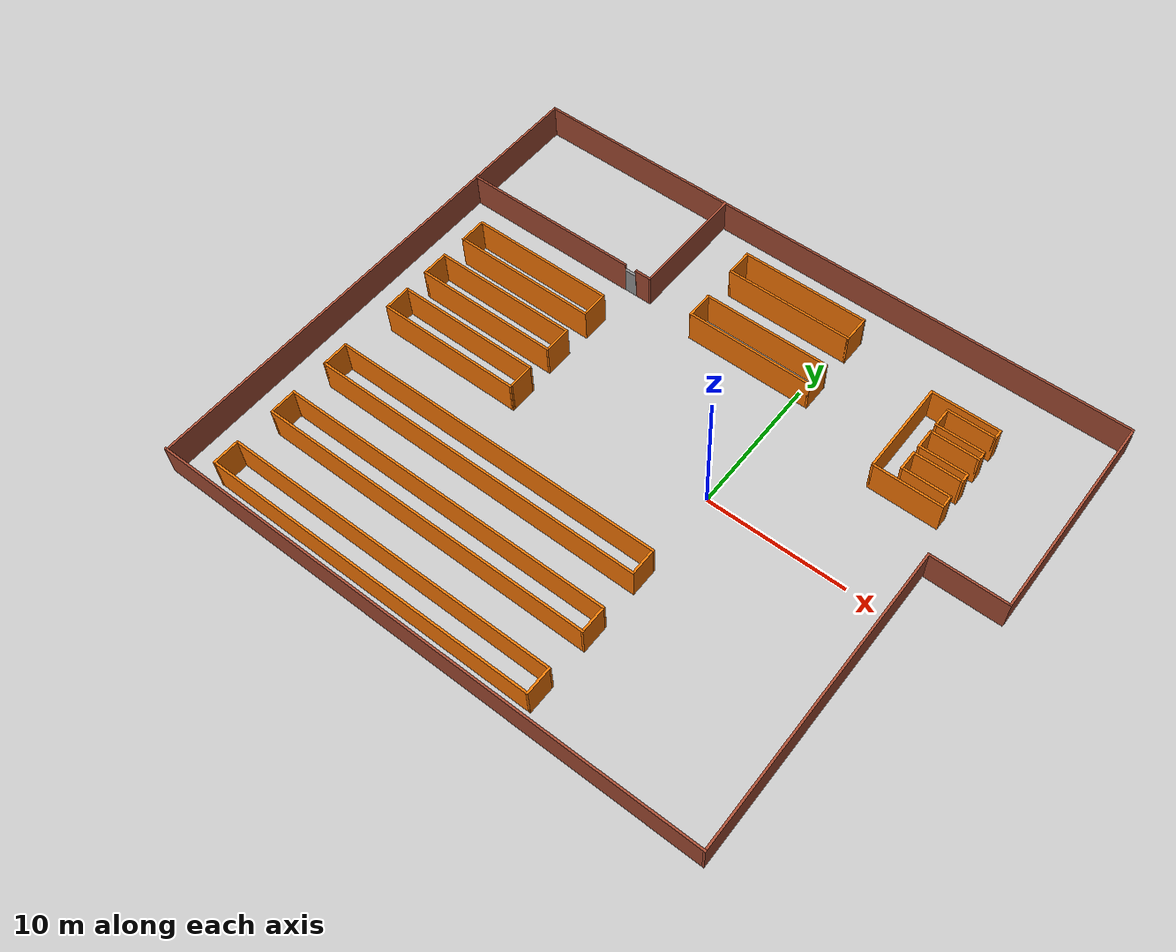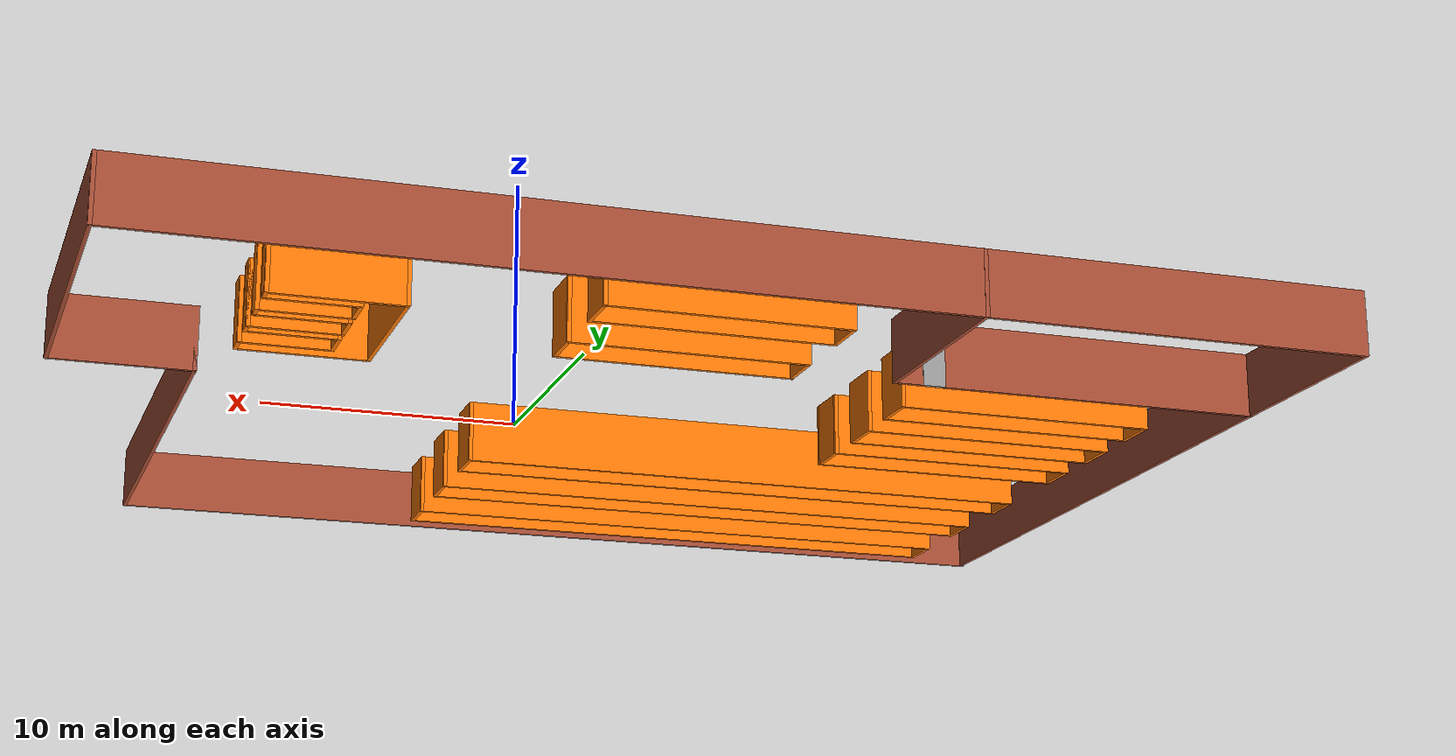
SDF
<?xml version='1.0'?>
<sdf version='1.6'>
  <model name='si_amr_factory'>
    <pose frame=''>-4.35152 0.143937 0 0 -0 0</pose>
    <link name='Door_0'>
      <collision name='Door_0_Collision'>
        <geometry>
          <box>
            <size>0.9 0.17 2</size>
          </box>
        </geometry>
        <pose frame=''>0 0 1 0 -0 0</pose>
      </collision>
      <visual name='Door_0_Visual'>
        <pose frame=''>0 0 1 0 -0 0</pose>
        <geometry>
          <box>
            <size>0.9 0.17 2</size>
          </box>
        </geometry>
        <material>
          <script>
            <uri>file://media/materials/scripts/gazebo.material</uri>
            <name>Gazebo/Grey</name>
          </script>
        </material>
      </visual>
      <pose frame=''>-9.26953 9.88213 0 0 -0 0</pose>
    </link>
    <link name='Wall_11'>
      <collision name='Wall_11_Collision'>
        <geometry>
          <box>
            <size>40.25 0.15 2.5</size>
          </box>
        </geometry>
        <pose frame=''>0 0 1.25 0 -0 0</pose>
      </collision>
      <visual name='Wall_11_Visual'>
        <pose frame=''>0 0 1.25 0 -0 0</pose>
        <geometry>
          <box>
            <size>40.25 0.15 2.5</size>
          </box>
        </geometry>
        <material>
          <script>
            <uri>file://media/materials/scripts/gazebo.material</uri>
            <name>Gazebo/Bricks</name>
          </script>
          <ambient>1 1 1 1</ambient>
        </material>
        <meta>
          <layer>0</layer>
        </meta>
      </visual>
      <pose frame=''>-2.675 -18.228 0 0 -0 0</pose>
    </link>
    <link name='Wall_12'>
      <collision name='Wall_12_Collision'>
        <geometry>
          <box>
            <size>21.75 0.15 2.5</size>
          </box>
        </geometry>
        <pose frame=''>0 0 1.25 0 -0 0</pose>
      </collision>
      <visual name='Wall_12_Visual'>
        <pose frame=''>0 0 1.25 0 -0 0</pose>
        <geometry>
          <box>
            <size>21.75 0.15 2.5</size>
          </box>
        </geometry>
        <material>
          <script>
            <uri>file://media/materials/scripts/gazebo.material</uri>
            <name>Gazebo/Bricks</name>
          </script>
          <ambient>1 1 1 1</ambient>
        </material>
        <meta>
          <layer>0</layer>
        </meta>
      </visual>
      <pose frame=''>17.375 -7.42803 0 0 -0 1.5708</pose>
    </link>
    <link name='Wall_13'>
      <collision name='Wall_13_Collision'>
        <geometry>
          <box>
            <size>5.5 0.15 2.5</size>
          </box>
        </geometry>
        <pose frame=''>0 0 1.25 0 -0 0</pose>
      </collision>
      <visual name='Wall_13_Visual'>
        <pose frame=''>0 0 1.25 0 -0 0</pose>
        <geometry>
          <box>
            <size>5.5 0.15 2.5</size>
          </box>
        </geometry>
        <material>
          <script>
            <uri>file://media/materials/scripts/gazebo.material</uri>
            <name>Gazebo/Bricks</name>
          </script>
          <ambient>1 1 1 1</ambient>
        </material>
        <meta>
          <layer>0</layer>
        </meta>
      </visual>
      <pose frame=''>20.05 3.37197 0 0 -0 0</pose>
    </link>
    <link name='Wall_14'>
      <collision name='Wall_14_Collision'>
        <geometry>
          <box>
            <size>15 0.15 2.5</size>
          </box>
        </geometry>
        <pose frame=''>0 0 1.25 0 -0 0</pose>
      </collision>
      <visual name='Wall_14_Visual'>
        <pose frame=''>0 0 1.25 0 -0 0</pose>
        <geometry>
          <box>
            <size>15 0.15 2.5</size>
          </box>
        </geometry>
        <material>
          <script>
            <uri>file://media/materials/scripts/gazebo.material</uri>
            <name>Gazebo/Bricks</name>
          </script>
          <ambient>1 1 1 1</ambient>
        </material>
        <meta>
          <layer>0</layer>
        </meta>
      </visual>
      <pose frame=''>22.725 10.797 0 0 -0 1.5708</pose>
    </link>
    <link name='Wall_15'>
      <collision name='Wall_15_Collision'>
        <geometry>
          <box>
            <size>45.5 0.15 2.5</size>
          </box>
        </geometry>
        <pose frame=''>0 0 1.25 0 -0 0</pose>
      </collision>
      <visual name='Wall_15_Visual'>
        <pose frame=''>0 0 1.25 0 -0 0</pose>
        <geometry>
          <box>
            <size>45.5 0.15 2.5</size>
          </box>
        </geometry>
        <material>
          <script>
            <uri>file://media/materials/scripts/gazebo.material</uri>
            <name>Gazebo/Bricks</name>
          </script>
          <ambient>1 1 1 1</ambient>
        </material>
        <meta>
          <layer>0</layer>
        </meta>
      </visual>
      <pose frame=''>0.05 18.222 0 0 -0 3.14159</pose>
    </link>
    <link name='Wall_16'>
      <collision name='Wall_16_Collision'>
        <geometry>
          <box>
            <size>36.5 0.15 2.5</size>
          </box>
        </geometry>
        <pose frame=''>0 0 1.25 0 -0 0</pose>
      </collision>
      <visual name='Wall_16_Visual'>
        <pose frame=''>0 0 1.25 0 -0 0</pose>
        <geometry>
          <box>
            <size>36.5 0.15 2.5</size>
          </box>
        </geometry>
        <material>
          <script>
            <uri>file://media/materials/scripts/gazebo.material</uri>
            <name>Gazebo/Bricks</name>
          </script>
          <ambient>1 1 1 1</ambient>
        </material>
        <meta>
          <layer>0</layer>
        </meta>
      </visual>
      <pose frame=''>-22.625 0.046968 0 0 -0 -1.5708</pose>
    </link>
    <link name='Wall_18'>
      <collision name='Wall_18_Collision'>
        <geometry>
          <box>
            <size>24.5 0.15 2.5</size>
          </box>
        </geometry>
        <pose frame=''>0 0 1.25 0 -0 0</pose>
      </collision>
      <visual name='Wall_18_Visual'>
        <pose frame=''>0 0 1.25 0 -0 0</pose>
        <geometry>
          <box>
            <size>24.5 0.15 2.5</size>
          </box>
        </geometry>
        <material>
          <script>
            <uri>file://media/materials/scripts/gazebo.material</uri>
            <name>Gazebo/Grey</name>
          </script>
          <ambient>0.996078 0.47451 0.0196078 1</ambient>
        </material>
        <meta>
          <layer>0</layer>
        </meta>
      </visual>
      <pose frame=''>-7.49549 -17.1298 0 0 -0 0</pose>
    </link>
    <link name='Wall_19'>
      <collision name='Wall_19_Collision'>
        <geometry>
          <box>
            <size>2 0.15 2.5</size>
          </box>
        </geometry>
        <pose frame=''>0 0 1.25 0 -0 0</pose>
      </collision>
      <visual name='Wall_19_Visual'>
        <pose frame=''>0 0 1.25 0 -0 0</pose>
        <geometry>
          <box>
            <size>2 0.15 2.5</size>
          </box>
        </geometry>
        <material>
          <script>
            <uri>file://media/materials/scripts/gazebo.material</uri>
            <name>Gazebo/Grey</name>
          </script>
          <ambient>0.996078 0.47451 0.0196078 1</ambient>
        </material>
        <meta>
          <layer>0</layer>
        </meta>
      </visual>
      <pose frame=''>4.67951 -16.2048 0 0 -0 1.5708</pose>
    </link>
    <link name='Wall_23'>
      <collision name='Wall_23_Collision'>
        <geometry>
          <box>
            <size>24.5 0.15 2.5</size>
          </box>
        </geometry>
        <pose frame=''>0 0 1.25 0 -0 0</pose>
      </collision>
      <visual name='Wall_23_Visual'>
        <pose frame=''>0 0 1.25 0 -0 0</pose>
        <geometry>
          <box>
            <size>24.5 0.15 2.5</size>
          </box>
        </geometry>
        <material>
          <script>
            <uri>file://media/materials/scripts/gazebo.material</uri>
            <name>Gazebo/Grey</name>
          </script>
          <ambient>0.996078 0.47451 0.0196078 1</ambient>
        </material>
        <meta>
          <layer>0</layer>
        </meta>
      </visual>
      <pose frame=''>-7.49549 -15.2798 0 0 -0 3.14159</pose>
    </link>
    <link name='Wall_24'>
      <collision name='Wall_24_Collision'>
        <geometry>
          <box>
            <size>2 0.15 2.5</size>
          </box>
        </geometry>
        <pose frame=''>0 0 1.25 0 -0 0</pose>
      </collision>
      <visual name='Wall_24_Visual'>
        <pose frame=''>0 0 1.25 0 -0 0</pose>
        <geometry>
          <box>
            <size>2 0.15 2.5</size>
          </box>
        </geometry>
        <material>
          <script>
            <uri>file://media/materials/scripts/gazebo.material</uri>
            <name>Gazebo/Grey</name>
          </script>
          <ambient>0.996078 0.47451 0.0196078 1</ambient>
        </material>
        <meta>
          <layer>0</layer>
        </meta>
      </visual>
      <pose frame=''>-19.6705 -16.2048 0 0 -0 -1.5708</pose>
    </link>
    <link name='Wall_26'>
      <collision name='Wall_26_Collision'>
        <geometry>
          <box>
            <size>24.5 0.15 2.5</size>
          </box>
        </geometry>
        <pose frame=''>0 0 1.25 0 -0 0</pose>
      </collision>
      <visual name='Wall_26_Visual'>
        <pose frame=''>0 0 1.25 0 -0 0</pose>
        <geometry>
          <box>
            <size>24.5 0.15 2.5</size>
          </box>
        </geometry>
        <material>
          <script>
            <uri>file://media/materials/scripts/gazebo.material</uri>
            <name>Gazebo/Grey</name>
          </script>
          <ambient>0.996078 0.47451 0.0196078 1</ambient>
        </material>
        <meta>
          <layer>0</layer>
        </meta>
      </visual>
      <pose frame=''>-7.44652 -12.4509 0 0 -0 0</pose>
    </link>
    <link name='Wall_27'>
      <collision name='Wall_27_Collision'>
        <geometry>
          <box>
            <size>2 0.15 2.5</size>
          </box>
        </geometry>
        <pose frame=''>0 0 1.25 0 -0 0</pose>
      </collision>
      <visual name='Wall_27_Visual'>
        <pose frame=''>0 0 1.25 0 -0 0</pose>
        <geometry>
          <box>
            <size>2 0.15 2.5</size>
          </box>
        </geometry>
        <material>
          <script>
            <uri>file://media/materials/scripts/gazebo.material</uri>
            <name>Gazebo/Grey</name>
          </script>
          <ambient>0.996078 0.47451 0.0196078 1</ambient>
        </material>
        <meta>
          <layer>0</layer>
        </meta>
      </visual>
      <pose frame=''>4.72848 -11.5259 0 0 -0 1.5708</pose>
    </link>
    <link name='Wall_28'>
      <collision name='Wall_28_Collision'>
        <geometry>
          <box>
            <size>24.5 0.15 2.5</size>
          </box>
        </geometry>
        <pose frame=''>0 0 1.25 0 -0 0</pose>
      </collision>
      <visual name='Wall_28_Visual'>
        <pose frame=''>0 0 1.25 0 -0 0</pose>
        <geometry>
          <box>
            <size>24.5 0.15 2.5</size>
          </box>
        </geometry>
        <material>
          <script>
            <uri>file://media/materials/scripts/gazebo.material</uri>
            <name>Gazebo/Grey</name>
          </script>
          <ambient>0.996078 0.47451 0.0196078 1</ambient>
        </material>
        <meta>
          <layer>0</layer>
        </meta>
      </visual>
      <pose frame=''>-7.44652 -10.6009 0 0 -0 3.14159</pose>
    </link>
    <link name='Wall_29'>
      <collision name='Wall_29_Collision'>
        <geometry>
          <box>
            <size>2 0.15 2.5</size>
          </box>
        </geometry>
        <pose frame=''>0 0 1.25 0 -0 0</pose>
      </collision>
      <visual name='Wall_29_Visual'>
        <pose frame=''>0 0 1.25 0 -0 0</pose>
        <geometry>
          <box>
            <size>2 0.15 2.5</size>
          </box>
        </geometry>
        <material>
          <script>
            <uri>file://media/materials/scripts/gazebo.material</uri>
            <name>Gazebo/Grey</name>
          </script>
          <ambient>0.996078 0.47451 0.0196078 1</ambient>
        </material>
        <meta>
          <layer>0</layer>
        </meta>
      </visual>
      <pose frame=''>-19.6215 -11.5259 0 0 -0 -1.5708</pose>
    </link>
    <link name='Wall_31'>
      <collision name='Wall_31_Collision'>
        <geometry>
          <box>
            <size>24.5 0.15 2.5</size>
          </box>
        </geometry>
        <pose frame=''>0 0 1.25 0 -0 0</pose>
      </collision>
      <visual name='Wall_31_Visual'>
        <pose frame=''>0 0 1.25 0 -0 0</pose>
        <geometry>
          <box>
            <size>24.5 0.15 2.5</size>
          </box>
        </geometry>
        <material>
          <script>
            <uri>file://media/materials/scripts/gazebo.material</uri>
            <name>Gazebo/Grey</name>
          </script>
          <ambient>0.996078 0.47451 0.0196078 1</ambient>
        </material>
        <meta>
          <layer>0</layer>
        </meta>
      </visual>
      <pose frame=''>-7.46965 -7.87105 0 0 -0 0</pose>
    </link>
    <link name='Wall_32'>
      <collision name='Wall_32_Collision'>
        <geometry>
          <box>
            <size>2 0.15 2.5</size>
          </box>
        </geometry>
        <pose frame=''>0 0 1.25 0 -0 0</pose>
      </collision>
      <visual name='Wall_32_Visual'>
        <pose frame=''>0 0 1.25 0 -0 0</pose>
        <geometry>
          <box>
            <size>2 0.15 2.5</size>
          </box>
        </geometry>
        <material>
          <script>
            <uri>file://media/materials/scripts/gazebo.material</uri>
            <name>Gazebo/Grey</name>
          </script>
          <ambient>0.996078 0.47451 0.0196078 1</ambient>
        </material>
        <meta>
          <layer>0</layer>
        </meta>
      </visual>
      <pose frame=''>4.70535 -6.94605 0 0 -0 1.5708</pose>
    </link>
    <link name='Wall_33'>
      <collision name='Wall_33_Collision'>
        <geometry>
          <box>
            <size>24.5 0.15 2.5</size>
          </box>
        </geometry>
        <pose frame=''>0 0 1.25 0 -0 0</pose>
      </collision>
      <visual name='Wall_33_Visual'>
        <pose frame=''>0 0 1.25 0 -0 0</pose>
        <geometry>
          <box>
            <size>24.5 0.15 2.5</size>
          </box>
        </geometry>
        <material>
          <script>
            <uri>file://media/materials/scripts/gazebo.material</uri>
            <name>Gazebo/Grey</name>
          </script>
          <ambient>0.996078 0.47451 0.0196078 1</ambient>
        </material>
        <meta>
          <layer>0</layer>
        </meta>
      </visual>
      <pose frame=''>-7.46965 -6.02105 0 0 -0 3.14159</pose>
    </link>
    <link name='Wall_34'>
      <collision name='Wall_34_Collision'>
        <geometry>
          <box>
            <size>2 0.15 2.5</size>
          </box>
        </geometry>
        <pose frame=''>0 0 1.25 0 -0 0</pose>
      </collision>
      <visual name='Wall_34_Visual'>
        <pose frame=''>0 0 1.25 0 -0 0</pose>
        <geometry>
          <box>
            <size>2 0.15 2.5</size>
          </box>
        </geometry>
        <material>
          <script>
            <uri>file://media/materials/scripts/gazebo.material</uri>
            <name>Gazebo/Grey</name>
          </script>
          <ambient>0.996078 0.47451 0.0196078 1</ambient>
        </material>
        <meta>
          <layer>0</layer>
        </meta>
      </visual>
      <pose frame=''>-19.6446 -6.94605 0 0 -0 -1.5708</pose>
    </link>
    <link name='Wall_36'>
      <collision name='Wall_36_Collision'>
        <geometry>
          <box>
            <size>10.5 0.15 2.5</size>
          </box>
        </geometry>
        <pose frame=''>0 0 1.25 0 -0 0</pose>
      </collision>
      <visual name='Wall_36_Visual'>
        <pose frame=''>0 0 1.25 0 -0 0</pose>
        <geometry>
          <box>
            <size>10.5 0.15 2.5</size>
          </box>
        </geometry>
        <material>
          <script>
            <uri>file://media/materials/scripts/gazebo.material</uri>
            <name>Gazebo/Grey</name>
          </script>
          <ambient>0.996078 0.47451 0.0196078 1</ambient>
        </material>
        <meta>
          <layer>0</layer>
        </meta>
      </visual>
      <pose frame=''>-14.4928 1.42746 0 0 -0 0</pose>
    </link>
    <link name='Wall_37'>
      <collision name='Wall_37_Collision'>
        <geometry>
          <box>
            <size>2 0.15 2.5</size>
          </box>
        </geometry>
        <pose frame=''>0 0 1.25 0 -0 0</pose>
      </collision>
      <visual name='Wall_37_Visual'>
        <pose frame=''>0 0 1.25 0 -0 0</pose>
        <geometry>
          <box>
            <size>2 0.15 2.5</size>
          </box>
        </geometry>
        <material>
          <script>
            <uri>file://media/materials/scripts/gazebo.material</uri>
            <name>Gazebo/Grey</name>
          </script>
          <ambient>0.996078 0.47451 0.0196078 1</ambient>
        </material>
        <meta>
          <layer>0</layer>
        </meta>
      </visual>
      <pose frame=''>-9.31778 2.35246 0 0 -0 1.5708</pose>
    </link>
    <link name='Wall_38'>
      <collision name='Wall_38_Collision'>
        <geometry>
          <box>
            <size>10.5 0.15 2.5</size>
          </box>
        </geometry>
        <pose frame=''>0 0 1.25 0 -0 0</pose>
      </collision>
      <visual name='Wall_38_Visual'>
        <pose frame=''>0 0 1.25 0 -0 0</pose>
        <geometry>
          <box>
            <size>10.5 0.15 2.5</size>
          </box>
        </geometry>
        <material>
          <script>
            <uri>file://media/materials/scripts/gazebo.material</uri>
            <name>Gazebo/Grey</name>
          </script>
          <ambient>0.996078 0.47451 0.0196078 1</ambient>
        </material>
        <meta>
          <layer>0</layer>
        </meta>
      </visual>
      <pose frame=''>-14.4928 3.27746 0 0 -0 3.14159</pose>
    </link>
    <link name='Wall_39'>
      <collision name='Wall_39_Collision'>
        <geometry>
          <box>
            <size>2 0.15 2.5</size>
          </box>
        </geometry>
        <pose frame=''>0 0 1.25 0 -0 0</pose>
      </collision>
      <visual name='Wall_39_Visual'>
        <pose frame=''>0 0 1.25 0 -0 0</pose>
        <geometry>
          <box>
            <size>2 0.15 2.5</size>
          </box>
        </geometry>
        <material>
          <script>
            <uri>file://media/materials/scripts/gazebo.material</uri>
            <name>Gazebo/Grey</name>
          </script>
          <ambient>0.996078 0.47451 0.0196078 1</ambient>
        </material>
        <meta>
          <layer>0</layer>
        </meta>
      </visual>
      <pose frame=''>-19.6678 2.35246 0 0 -0 -1.5708</pose>
    </link>
    <link name='Wall_42'>
      <collision name='Wall_42_Collision'>
        <geometry>
          <box>
            <size>10.5 0.15 2.5</size>
          </box>
        </geometry>
        <pose frame=''>0 0 1.25 0 -0 0</pose>
      </collision>
      <visual name='Wall_42_Visual'>
        <pose frame=''>0 0 1.25 0 -0 0</pose>
        <geometry>
          <box>
            <size>10.5 0.15 2.5</size>
          </box>
        </geometry>
        <material>
          <script>
            <uri>file://media/materials/scripts/gazebo.material</uri>
            <name>Gazebo/Grey</name>
          </script>
          <ambient>0.996078 0.47451 0.0196078 1</ambient>
        </material>
        <meta>
          <layer>0</layer>
        </meta>
      </visual>
      <pose frame=''>-14.4696 -2.18092 0 0 -0 0</pose>
    </link>
    <link name='Wall_43'>
      <collision name='Wall_43_Collision'>
        <geometry>
          <box>
            <size>2 0.15 2.5</size>
          </box>
        </geometry>
        <pose frame=''>0 0 1.25 0 -0 0</pose>
      </collision>
      <visual name='Wall_43_Visual'>
        <pose frame=''>0 0 1.25 0 -0 0</pose>
        <geometry>
          <box>
            <size>2 0.15 2.5</size>
          </box>
        </geometry>
        <material>
          <script>
            <uri>file://media/materials/scripts/gazebo.material</uri>
            <name>Gazebo/Grey</name>
          </script>
          <ambient>0.996078 0.47451 0.0196078 1</ambient>
        </material>
        <meta>
          <layer>0</layer>
        </meta>
      </visual>
      <pose frame=''>-9.29465 -1.25592 0 0 -0 1.5708</pose>
    </link>
    <link name='Wall_44'>
      <collision name='Wall_44_Collision'>
        <geometry>
          <box>
            <size>10.5 0.15 2.5</size>
          </box>
        </geometry>
        <pose frame=''>0 0 1.25 0 -0 0</pose>
      </collision>
      <visual name='Wall_44_Visual'>
        <pose frame=''>0 0 1.25 0 -0 0</pose>
        <geometry>
          <box>
            <size>10.5 0.15 2.5</size>
          </box>
        </geometry>
        <material>
          <script>
            <uri>file://media/materials/scripts/gazebo.material</uri>
            <name>Gazebo/Grey</name>
          </script>
          <ambient>0.996078 0.47451 0.0196078 1</ambient>
        </material>
        <meta>
          <layer>0</layer>
        </meta>
      </visual>
      <pose frame=''>-14.4696 -0.330918 0 0 -0 3.14159</pose>
    </link>
    <link name='Wall_45'>
      <collision name='Wall_45_Collision'>
        <geometry>
          <box>
            <size>2 0.15 2.5</size>
          </box>
        </geometry>
        <pose frame=''>0 0 1.25 0 -0 0</pose>
      </collision>
      <visual name='Wall_45_Visual'>
        <pose frame=''>0 0 1.25 0 -0 0</pose>
        <geometry>
          <box>
            <size>2 0.15 2.5</size>
          </box>
        </geometry>
        <material>
          <script>
            <uri>file://media/materials/scripts/gazebo.material</uri>
            <name>Gazebo/Grey</name>
          </script>
          <ambient>0.996078 0.47451 0.0196078 1</ambient>
        </material>
        <meta>
          <layer>0</layer>
        </meta>
      </visual>
      <pose frame=''>-19.6446 -1.25592 0 0 -0 -1.5708</pose>
    </link>
    <link name='Wall_48'>
      <collision name='Wall_48_Collision'>
        <geometry>
          <box>
            <size>10.5 0.15 2.5</size>
          </box>
        </geometry>
        <pose frame=''>0 0 1.25 0 -0 0</pose>
      </collision>
      <visual name='Wall_48_Visual'>
        <pose frame=''>0 0 1.25 0 -0 0</pose>
        <geometry>
          <box>
            <size>10.5 0.15 2.5</size>
          </box>
        </geometry>
        <material>
          <script>
            <uri>file://media/materials/scripts/gazebo.material</uri>
            <name>Gazebo/Grey</name>
          </script>
          <ambient>0.996078 0.47451 0.0196078 1</ambient>
        </material>
        <meta>
          <layer>0</layer>
        </meta>
      </visual>
      <pose frame=''>-14.4234 5.08209 0 0 -0 0</pose>
    </link>
    <link name='Wall_49'>
      <collision name='Wall_49_Collision'>
        <geometry>
          <box>
            <size>2 0.15 2.5</size>
          </box>
        </geometry>
        <pose frame=''>0 0 1.25 0 -0 0</pose>
      </collision>
      <visual name='Wall_49_Visual'>
        <pose frame=''>0 0 1.25 0 -0 0</pose>
        <geometry>
          <box>
            <size>2 0.15 2.5</size>
          </box>
        </geometry>
        <material>
          <script>
            <uri>file://media/materials/scripts/gazebo.material</uri>
            <name>Gazebo/Grey</name>
          </script>
          <ambient>0.996078 0.47451 0.0196078 1</ambient>
        </material>
        <meta>
          <layer>0</layer>
        </meta>
      </visual>
      <pose frame=''>-9.24839 6.00709 0 0 -0 1.5708</pose>
    </link>
    <link name='Wall_50'>
      <collision name='Wall_50_Collision'>
        <geometry>
          <box>
            <size>10.5 0.15 2.5</size>
          </box>
        </geometry>
        <pose frame=''>0 0 1.25 0 -0 0</pose>
      </collision>
      <visual name='Wall_50_Visual'>
        <pose frame=''>0 0 1.25 0 -0 0</pose>
        <geometry>
          <box>
            <size>10.5 0.15 2.5</size>
          </box>
        </geometry>
        <material>
          <script>
            <uri>file://media/materials/scripts/gazebo.material</uri>
            <name>Gazebo/Grey</name>
          </script>
          <ambient>0.996078 0.47451 0.0196078 1</ambient>
        </material>
        <meta>
          <layer>0</layer>
        </meta>
      </visual>
      <pose frame=''>-14.4234 6.93209 0 0 -0 3.14159</pose>
    </link>
    <link name='Wall_51'>
      <collision name='Wall_51_Collision'>
        <geometry>
          <box>
            <size>2 0.15 2.5</size>
          </box>
        </geometry>
        <pose frame=''>0 0 1.25 0 -0 0</pose>
      </collision>
      <visual name='Wall_51_Visual'>
        <pose frame=''>0 0 1.25 0 -0 0</pose>
        <geometry>
          <box>
            <size>2 0.15 2.5</size>
          </box>
        </geometry>
        <material>
          <script>
            <uri>file://media/materials/scripts/gazebo.material</uri>
            <name>Gazebo/Grey</name>
          </script>
          <ambient>0.996078 0.47451 0.0196078 1</ambient>
        </material>
        <meta>
          <layer>0</layer>
        </meta>
      </visual>
      <pose frame=''>-19.5984 6.00709 0 0 -0 -1.5708</pose>
    </link>
    <link name='Wall_53'>
      <collision name='Wall_53_Collision'>
        <geometry>
          <box>
            <size>9.25 0.15 2.5</size>
          </box>
        </geometry>
        <pose frame=''>0 0 1.25 0 -0 0</pose>
      </collision>
      <visual name='Wall_53_Visual'>
        <pose frame=''>0 0 1.25 0 -0 0</pose>
        <geometry>
          <box>
            <size>9.25 0.15 2.5</size>
          </box>
        </geometry>
        <material>
          <script>
            <uri>file://media/materials/scripts/gazebo.material</uri>
            <name>Gazebo/Grey</name>
          </script>
          <ambient>0.996078 0.47451 0.0196078 1</ambient>
        </material>
        <meta>
          <layer>0</layer>
        </meta>
      </visual>
      <pose frame=''>0.64642 13.6054 0 0 -0 0</pose>
    </link>
    <link name='Wall_54'>
      <collision name='Wall_54_Collision'>
        <geometry>
          <box>
            <size>2 0.15 2.5</size>
          </box>
        </geometry>
        <pose frame=''>0 0 1.25 0 -0 0</pose>
      </collision>
      <visual name='Wall_54_Visual'>
        <pose frame=''>0 0 1.25 0 -0 0</pose>
        <geometry>
          <box>
            <size>2 0.15 2.5</size>
          </box>
        </geometry>
        <material>
          <script>
            <uri>file://media/materials/scripts/gazebo.material</uri>
            <name>Gazebo/Grey</name>
          </script>
          <ambient>0.996078 0.47451 0.0196078 1</ambient>
        </material>
        <meta>
          <layer>0</layer>
        </meta>
      </visual>
      <pose frame=''>5.19642 14.5304 0 0 -0 1.5708</pose>
    </link>
    <link name='Wall_55'>
      <collision name='Wall_55_Collision'>
        <geometry>
          <box>
            <size>9.25 0.15 2.5</size>
          </box>
        </geometry>
        <pose frame=''>0 0 1.25 0 -0 0</pose>
      </collision>
      <visual name='Wall_55_Visual'>
        <pose frame=''>0 0 1.25 0 -0 0</pose>
        <geometry>
          <box>
            <size>9.25 0.15 2.5</size>
          </box>
        </geometry>
        <material>
          <script>
            <uri>file://media/materials/scripts/gazebo.material</uri>
            <name>Gazebo/Grey</name>
          </script>
          <ambient>0.996078 0.47451 0.0196078 1</ambient>
        </material>
        <meta>
          <layer>0</layer>
        </meta>
      </visual>
      <pose frame=''>0.64642 15.4554 0 0 -0 3.14159</pose>
    </link>
    <link name='Wall_56'>
      <collision name='Wall_56_Collision'>
        <geometry>
          <box>
            <size>2 0.15 2.5</size>
          </box>
        </geometry>
        <pose frame=''>0 0 1.25 0 -0 0</pose>
      </collision>
      <visual name='Wall_56_Visual'>
        <pose frame=''>0 0 1.25 0 -0 0</pose>
        <geometry>
          <box>
            <size>2 0.15 2.5</size>
          </box>
        </geometry>
        <material>
          <script>
            <uri>file://media/materials/scripts/gazebo.material</uri>
            <name>Gazebo/Grey</name>
          </script>
          <ambient>0.996078 0.47451 0.0196078 1</ambient>
        </material>
        <meta>
          <layer>0</layer>
        </meta>
      </visual>
      <pose frame=''>-3.90358 14.5304 0 0 -0 -1.5708</pose>
    </link>
    <link name='Wall_58'>
      <collision name='Wall_58_Collision'>
        <geometry>
          <box>
            <size>9.25 0.15 2.5</size>
          </box>
        </geometry>
        <pose frame=''>0 0 1.25 0 -0 0</pose>
      </collision>
      <visual name='Wall_58_Visual'>
        <pose frame=''>0 0 1.25 0 -0 0</pose>
        <geometry>
          <box>
            <size>9.25 0.15 2.5</size>
          </box>
        </geometry>
        <material>
          <script>
            <uri>file://media/materials/scripts/gazebo.material</uri>
            <name>Gazebo/Grey</name>
          </script>
          <ambient>0.996078 0.47451 0.0196078 1</ambient>
        </material>
        <meta>
          <layer>0</layer>
        </meta>
      </visual>
      <pose frame=''>0.69889 9.1804 0 0 -0 0</pose>
    </link>
    <link name='Wall_59'>
      <collision name='Wall_59_Collision'>
        <geometry>
          <box>
            <size>2 0.15 2.5</size>
          </box>
        </geometry>
        <pose frame=''>0 0 1.25 0 -0 0</pose>
      </collision>
      <visual name='Wall_59_Visual'>
        <pose frame=''>0 0 1.25 0 -0 0</pose>
        <geometry>
          <box>
            <size>2 0.15 2.5</size>
          </box>
        </geometry>
        <material>
          <script>
            <uri>file://media/materials/scripts/gazebo.material</uri>
            <name>Gazebo/Grey</name>
          </script>
          <ambient>0.996078 0.47451 0.0196078 1</ambient>
        </material>
        <meta>
          <layer>0</layer>
        </meta>
      </visual>
      <pose frame=''>5.24889 10.1054 0 0 -0 1.5708</pose>
    </link>
    <link name='Wall_60'>
      <collision name='Wall_60_Collision'>
        <geometry>
          <box>
            <size>9.25 0.15 2.5</size>
          </box>
        </geometry>
        <pose frame=''>0 0 1.25 0 -0 0</pose>
      </collision>
      <visual name='Wall_60_Visual'>
        <pose frame=''>0 0 1.25 0 -0 0</pose>
        <geometry>
          <box>
            <size>9.25 0.15 2.5</size>
          </box>
        </geometry>
        <material>
          <script>
            <uri>file://media/materials/scripts/gazebo.material</uri>
            <name>Gazebo/Grey</name>
          </script>
          <ambient>0.996078 0.47451 0.0196078 1</ambient>
        </material>
        <meta>
          <layer>0</layer>
        </meta>
      </visual>
      <pose frame=''>0.69889 11.0304 0 0 -0 3.14159</pose>
    </link>
    <link name='Wall_61'>
      <collision name='Wall_61_Collision'>
        <geometry>
          <box>
            <size>2 0.15 2.5</size>
          </box>
        </geometry>
        <pose frame=''>0 0 1.25 0 -0 0</pose>
      </collision>
      <visual name='Wall_61_Visual'>
        <pose frame=''>0 0 1.25 0 -0 0</pose>
        <geometry>
          <box>
            <size>2 0.15 2.5</size>
          </box>
        </geometry>
        <material>
          <script>
            <uri>file://media/materials/scripts/gazebo.material</uri>
            <name>Gazebo/Grey</name>
          </script>
          <ambient>0.996078 0.47451 0.0196078 1</ambient>
        </material>
        <meta>
          <layer>0</layer>
        </meta>
      </visual>
      <pose frame=''>-3.85111 10.1054 0 0 -0 -1.5708</pose>
    </link>
    <link name='Wall_63'>
      <collision name='Wall_63_Collision'>
        <geometry>
          <box>
            <size>13 0.15 2.5</size>
          </box>
        </geometry>
        <pose frame=''>0 0 1.25 0 -0 0</pose>
      </collision>
      <visual name='Wall_63_Visual'>
        <pose frame=''>0 0 1.25 0 -0 0</pose>
        <geometry>
          <box>
            <size>13 0.15 2.5</size>
          </box>
        </geometry>
        <material>
          <script>
            <uri>file://media/materials/scripts/gazebo.material</uri>
            <name>Gazebo/Bricks</name>
          </script>
          <ambient>1 1 1 1</ambient>
        </material>
        <meta>
          <layer>0</layer>
        </meta>
      </visual>
      <pose frame=''>-16.1712 9.85553 0 0 -0 0</pose>
    </link>
    <link name='Wall_65'>
      <collision name='Wall_65_Collision'>
        <geometry>
          <box>
            <size>1.25 0.15 2.5</size>
          </box>
        </geometry>
        <pose frame=''>0 0 1.25 0 -0 0</pose>
      </collision>
      <visual name='Wall_65_Visual'>
        <pose frame=''>0 0 1.25 0 -0 0</pose>
        <geometry>
          <box>
            <size>1.25 0.15 2.5</size>
          </box>
        </geometry>
        <material>
          <script>
            <uri>file://media/materials/scripts/gazebo.material</uri>
            <name>Gazebo/Bricks</name>
          </script>
          <ambient>1 1 1 1</ambient>
        </material>
        <meta>
          <layer>0</layer>
        </meta>
      </visual>
      <pose frame=''>-8.25796 9.87803 0 0 -0 0</pose>
    </link>
    <link name='Wall_67'>
      <collision name='Wall_67_Collision'>
        <geometry>
          <box>
            <size>8.5 0.15 2.5</size>
          </box>
        </geometry>
        <pose frame=''>0 0 1.25 0 -0 0</pose>
      </collision>
      <visual name='Wall_67_Visual'>
        <pose frame=''>0 0 1.25 0 -0 0</pose>
        <geometry>
          <box>
            <size>8.5 0.15 2.5</size>
          </box>
        </geometry>
        <material>
          <script>
            <uri>file://media/materials/scripts/gazebo.material</uri>
            <name>Gazebo/Bricks</name>
          </script>
          <ambient>1 1 1 1</ambient>
        </material>
        <meta>
          <layer>0</layer>
        </meta>
      </visual>
      <pose frame=''>-7.70795 14.053 0 0 -0 1.5708</pose>
    </link>
    <link name='Wall_69'>
      <collision name='Wall_69_Collision'>
        <geometry>
          <box>
            <size>5 0.15 2.5</size>
          </box>
        </geometry>
        <pose frame=''>0 0 1.25 0 -0 0</pose>
      </collision>
      <visual name='Wall_69_Visual'>
        <pose frame=''>0 0 1.25 0 -0 0</pose>
        <geometry>
          <box>
            <size>5 0.15 2.5</size>
          </box>
        </geometry>
        <material>
          <script>
            <uri>file://media/materials/scripts/gazebo.material</uri>
            <name>Gazebo/Grey</name>
          </script>
          <ambient>0.996078 0.47451 0.0196078 1</ambient>
        </material>
        <meta>
          <layer>0</layer>
        </meta>
      </visual>
      <pose frame=''>13.9592 6.58835 0 0 -0 0</pose>
    </link>
    <link name='Wall_70'>
      <collision name='Wall_70_Collision'>
        <geometry>
          <box>
            <size>1 0.15 2.5</size>
          </box>
        </geometry>
        <pose frame=''>0 0 1.25 0 -0 0</pose>
      </collision>
      <visual name='Wall_70_Visual'>
        <pose frame=''>0 0 1.25 0 -0 0</pose>
        <geometry>
          <box>
            <size>1 0.15 2.5</size>
          </box>
        </geometry>
        <material>
          <script>
            <uri>file://media/materials/scripts/gazebo.material</uri>
            <name>Gazebo/Grey</name>
          </script>
          <ambient>0.996078 0.47451 0.0196078 1</ambient>
        </material>
        <meta>
          <layer>0</layer>
        </meta>
      </visual>
      <pose frame=''>16.3842 7.01335 0 0 -0 1.5708</pose>
    </link>
    <link name='Wall_71'>
      <collision name='Wall_71_Collision'>
        <geometry>
          <box>
            <size>3.5 0.15 2.5</size>
          </box>
        </geometry>
        <pose frame=''>0 0 1.25 0 -0 0</pose>
      </collision>
      <visual name='Wall_71_Visual'>
        <pose frame=''>0 0 1.25 0 -0 0</pose>
        <geometry>
          <box>
            <size>3.5 0.15 2.5</size>
          </box>
        </geometry>
        <material>
          <script>
            <uri>file://media/materials/scripts/gazebo.material</uri>
            <name>Gazebo/Grey</name>
          </script>
          <ambient>0.996078 0.47451 0.0196078 1</ambient>
        </material>
        <meta>
          <layer>0</layer>
        </meta>
      </visual>
      <pose frame=''>14.7092 7.43835 0 0 -0 3.14159</pose>
    </link>
    <link name='Wall_73'>
      <collision name='Wall_73_Collision'>
        <geometry>
          <box>
            <size>1.5 0.15 2.5</size>
          </box>
        </geometry>
        <pose frame=''>0 0 1.25 0 -0 0</pose>
      </collision>
      <visual name='Wall_73_Visual'>
        <pose frame=''>0 0 1.25 0 -0 0</pose>
        <geometry>
          <box>
            <size>1.5 0.15 2.5</size>
          </box>
        </geometry>
        <material>
          <script>
            <uri>file://media/materials/scripts/gazebo.material</uri>
            <name>Gazebo/Grey</name>
          </script>
          <ambient>0.996078 0.47451 0.0196078 1</ambient>
        </material>
        <meta>
          <layer>0</layer>
        </meta>
      </visual>
      <pose frame=''>13.0342 8.11335 0 0 -0 1.5708</pose>
    </link>
    <link name='Wall_74'>
      <collision name='Wall_74_Collision'>
        <geometry>
          <box>
            <size>3.5 0.15 2.5</size>
          </box>
        </geometry>
        <pose frame=''>0 0 1.25 0 -0 0</pose>
      </collision>
      <visual name='Wall_74_Visual'>
        <pose frame=''>0 0 1.25 0 -0 0</pose>
        <geometry>
          <box>
            <size>3.5 0.15 2.5</size>
          </box>
        </geometry>
        <material>
          <script>
            <uri>file://media/materials/scripts/gazebo.material</uri>
            <name>Gazebo/Grey</name>
          </script>
          <ambient>0.996078 0.47451 0.0196078 1</ambient>
        </material>
        <meta>
          <layer>0</layer>
        </meta>
      </visual>
      <pose frame=''>14.7092 8.78835 0 0 -0 0</pose>
    </link>
    <link name='Wall_75'>
      <collision name='Wall_75_Collision'>
        <geometry>
          <box>
            <size>0.75 0.15 2.5</size>
          </box>
        </geometry>
        <pose frame=''>0 0 1.25 0 -0 0</pose>
      </collision>
      <visual name='Wall_75_Visual'>
        <pose frame=''>0 0 1.25 0 -0 0</pose>
        <geometry>
          <box>
            <size>0.75 0.15 2.5</size>
          </box>
        </geometry>
        <material>
          <script>
            <uri>file://media/materials/scripts/gazebo.material</uri>
            <name>Gazebo/Grey</name>
          </script>
          <ambient>0.996078 0.47451 0.0196078 1</ambient>
        </material>
        <meta>
          <layer>0</layer>
        </meta>
      </visual>
      <pose frame=''>16.3842 9.08835 0 0 -0 1.5708</pose>
    </link>
    <link name='Wall_76'>
      <collision name='Wall_76_Collision'>
        <geometry>
          <box>
            <size>3.5 0.15 2.5</size>
          </box>
        </geometry>
        <pose frame=''>0 0 1.25 0 -0 0</pose>
      </collision>
      <visual name='Wall_76_Visual'>
        <pose frame=''>0 0 1.25 0 -0 0</pose>
        <geometry>
          <box>
            <size>3.5 0.15 2.5</size>
          </box>
        </geometry>
        <material>
          <script>
            <uri>file://media/materials/scripts/gazebo.material</uri>
            <name>Gazebo/Grey</name>
          </script>
          <ambient>0.996078 0.47451 0.0196078 1</ambient>
        </material>
        <meta>
          <layer>0</layer>
        </meta>
      </visual>
      <pose frame=''>14.7092 9.38835 0 0 -0 3.14159</pose>
    </link>
    <link name='Wall_77'>
      <collision name='Wall_77_Collision'>
        <geometry>
          <box>
            <size>1.5 0.15 2.5</size>
          </box>
        </geometry>
        <pose frame=''>0 0 1.25 0 -0 0</pose>
      </collision>
      <visual name='Wall_77_Visual'>
        <pose frame=''>0 0 1.25 0 -0 0</pose>
        <geometry>
          <box>
            <size>1.5 0.15 2.5</size>
          </box>
        </geometry>
        <material>
          <script>
            <uri>file://media/materials/scripts/gazebo.material</uri>
            <name>Gazebo/Grey</name>
          </script>
          <ambient>0.996078 0.47451 0.0196078 1</ambient>
        </material>
        <meta>
          <layer>0</layer>
        </meta>
      </visual>
      <pose frame=''>13.0342 10.0633 0 0 -0 1.5708</pose>
    </link>
    <link name='Wall_78'>
      <collision name='Wall_78_Collision'>
        <geometry>
          <box>
            <size>3.5 0.15 2.5</size>
          </box>
        </geometry>
        <pose frame=''>0 0 1.25 0 -0 0</pose>
      </collision>
      <visual name='Wall_78_Visual'>
        <pose frame=''>0 0 1.25 0 -0 0</pose>
        <geometry>
          <box>
            <size>3.5 0.15 2.5</size>
          </box>
        </geometry>
        <material>
          <script>
            <uri>file://media/materials/scripts/gazebo.material</uri>
            <name>Gazebo/Grey</name>
          </script>
          <ambient>0.996078 0.47451 0.0196078 1</ambient>
        </material>
        <meta>
          <layer>0</layer>
        </meta>
      </visual>
      <pose frame=''>14.7092 10.7383 0 0 -0 0</pose>
    </link>
    <link name='Wall_79'>
      <collision name='Wall_79_Collision'>
        <geometry>
          <box>
            <size>0.75 0.15 2.5</size>
          </box>
        </geometry>
        <pose frame=''>0 0 1.25 0 -0 0</pose>
      </collision>
      <visual name='Wall_79_Visual'>
        <pose frame=''>0 0 1.25 0 -0 0</pose>
        <geometry>
          <box>
            <size>0.75 0.15 2.5</size>
          </box>
        </geometry>
        <material>
          <script>
            <uri>file://media/materials/scripts/gazebo.material</uri>
            <name>Gazebo/Grey</name>
          </script>
          <ambient>0.996078 0.47451 0.0196078 1</ambient>
        </material>
        <meta>
          <layer>0</layer>
        </meta>
      </visual>
      <pose frame=''>16.3842 11.0383 0 0 -0 1.5708</pose>
    </link>
    <link name='Wall_82'>
      <collision name='Wall_82_Collision'>
        <geometry>
          <box>
            <size>3.5 0.15 2.5</size>
          </box>
        </geometry>
        <pose frame=''>0 0 1.25 0 -0 0</pose>
      </collision>
      <visual name='Wall_82_Visual'>
        <pose frame=''>0 0 1.25 0 -0 0</pose>
        <geometry>
          <box>
            <size>3.5 0.15 2.5</size>
          </box>
        </geometry>
        <material>
          <script>
            <uri>file://media/materials/scripts/gazebo.material</uri>
            <name>Gazebo/Grey</name>
          </script>
          <ambient>0.996078 0.47451 0.0196078 1</ambient>
        </material>
        <meta>
          <layer>0</layer>
        </meta>
      </visual>
      <pose frame=''>14.7092 11.3383 0 0 -0 3.14159</pose>
    </link>
    <link name='Wall_83'>
      <collision name='Wall_83_Collision'>
        <geometry>
          <box>
            <size>1.5 0.15 2.5</size>
          </box>
        </geometry>
        <pose frame=''>0 0 1.25 0 -0 0</pose>
      </collision>
      <visual name='Wall_83_Visual'>
        <pose frame=''>0 0 1.25 0 -0 0</pose>
        <geometry>
          <box>
            <size>1.5 0.15 2.5</size>
          </box>
        </geometry>
        <material>
          <script>
            <uri>file://media/materials/scripts/gazebo.material</uri>
            <name>Gazebo/Grey</name>
          </script>
          <ambient>0.996078 0.47451 0.0196078 1</ambient>
        </material>
        <meta>
          <layer>0</layer>
        </meta>
      </visual>
      <pose frame=''>13.0342 12.0133 0 0 -0 1.5708</pose>
    </link>
    <link name='Wall_84'>
      <collision name='Wall_84_Collision'>
        <geometry>
          <box>
            <size>3.5 0.15 2.5</size>
          </box>
        </geometry>
        <pose frame=''>0 0 1.25 0 -0 0</pose>
      </collision>
      <visual name='Wall_84_Visual'>
        <pose frame=''>0 0 1.25 0 -0 0</pose>
        <geometry>
          <box>
            <size>3.5 0.15 2.5</size>
          </box>
        </geometry>
        <material>
          <script>
            <uri>file://media/materials/scripts/gazebo.material</uri>
            <name>Gazebo/Grey</name>
          </script>
          <ambient>0.996078 0.47451 0.0196078 1</ambient>
        </material>
        <meta>
          <layer>0</layer>
        </meta>
      </visual>
      <pose frame=''>14.7092 12.6883 0 0 -0 0</pose>
    </link>
    <link name='Wall_85'>
      <collision name='Wall_85_Collision'>
        <geometry>
          <box>
            <size>0.75 0.15 2.5</size>
          </box>
        </geometry>
        <pose frame=''>0 0 1.25 0 -0 0</pose>
      </collision>
      <visual name='Wall_85_Visual'>
        <pose frame=''>0 0 1.25 0 -0 0</pose>
        <geometry>
          <box>
            <size>0.75 0.15 2.5</size>
          </box>
        </geometry>
        <material>
          <script>
            <uri>file://media/materials/scripts/gazebo.material</uri>
            <name>Gazebo/Grey</name>
          </script>
          <ambient>0.996078 0.47451 0.0196078 1</ambient>
        </material>
        <meta>
          <layer>0</layer>
        </meta>
      </visual>
      <pose frame=''>16.3842 12.9883 0 0 -0 1.5708</pose>
    </link>
    <link name='Wall_86'>
      <collision name='Wall_86_Collision'>
        <geometry>
          <box>
            <size>5 0.15 2.5</size>
          </box>
        </geometry>
        <pose frame=''>0 0 1.25 0 -0 0</pose>
      </collision>
      <visual name='Wall_86_Visual'>
        <pose frame=''>0 0 1.25 0 -0 0</pose>
        <geometry>
          <box>
            <size>5 0.15 2.5</size>
          </box>
        </geometry>
        <material>
          <script>
            <uri>file://media/materials/scripts/gazebo.material</uri>
            <name>Gazebo/Grey</name>
          </script>
          <ambient>0.996078 0.47451 0.0196078 1</ambient>
        </material>
        <meta>
          <layer>0</layer>
        </meta>
      </visual>
      <pose frame=''>13.9592 13.2883 0 0 -0 3.14159</pose>
    </link>
    <link name='Wall_87'>
      <collision name='Wall_87_Collision'>
        <geometry>
          <box>
            <size>6.85 0.15 2.5</size>
          </box>
        </geometry>
        <pose frame=''>0 0 1.25 0 -0 0</pose>
      </collision>
      <visual name='Wall_87_Visual'>
        <pose frame=''>0 0 1.25 0 -0 0</pose>
        <geometry>
          <box>
            <size>6.85 0.15 2.5</size>
          </box>
        </geometry>
        <material>
          <script>
            <uri>file://media/materials/scripts/gazebo.material</uri>
            <name>Gazebo/Grey</name>
          </script>
          <ambient>0.996078 0.47451 0.0196078 1</ambient>
        </material>
        <meta>
          <layer>0</layer>
        </meta>
      </visual>
      <pose frame=''>11.5342 9.93835 0 0 -0 -1.5708</pose>
    </link>
    <static>1</static>
  </model>
</sdf>
